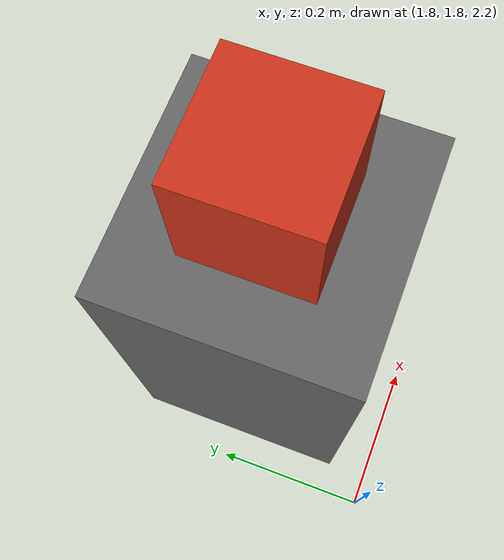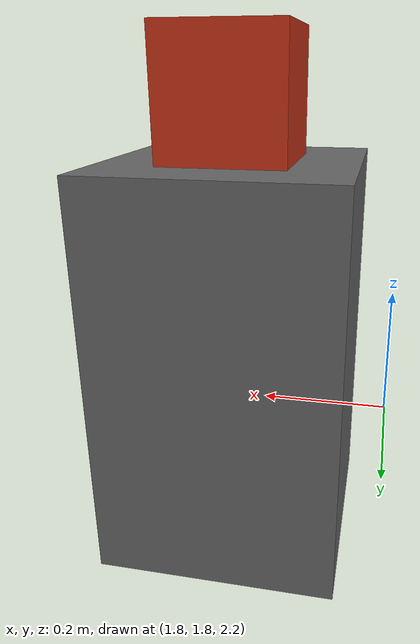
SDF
<?xml version="1.0" encoding="UTF-8"?>
<sdf version="1.9">
  <world name="default_payload_stand">
    <physics type="ode">
      <max_step_size>0.004</max_step_size>
      <real_time_factor>1.0</real_time_factor>
      <real_time_update_rate>250</real_time_update_rate>
    </physics>
    <gravity>0 0 -9.8</gravity>
    <magnetic_field>6e-06 2.3e-05 -4.2e-05</magnetic_field>
    <atmosphere type="adiabatic"/>
    <scene>
      <grid>false</grid>
      <ambient>0.4 0.4 0.4 1</ambient>
      <background>0.7 0.7 0.7 1</background>
      <shadows>true</shadows>
    </scene>
    <model name="ground_plane">
      <static>true</static>
      <link name="link">
        <collision name="collision">
          <geometry>
            <plane>
              <normal>0 0 1</normal>
              <size>1 1</size>
            </plane>
          </geometry>
          <surface>
            <friction>
              <ode/>
            </friction>
            <bounce/>
            <contact/>
          </surface>
        </collision>
        <visual name="visual">
          <geometry>
            <plane>
              <normal>0 0 1</normal>
              <size>500 500</size>
            </plane>
          </geometry>
          <material>
            <ambient>0.8 0.8 0.8 1</ambient>
            <diffuse>0.8 0.8 0.8 1</diffuse>
            <specular>0.8 0.8 0.8 1</specular>
          </material>
        </visual>
        <pose>0 0 0 0 -0 0</pose>
        <inertial>
          <pose>0 0 0 0 -0 0</pose>
          <mass>1</mass>
          <inertia>
            <ixx>1</ixx>
            <ixy>0</ixy>
            <ixz>0</ixz>
            <iyy>1</iyy>
            <iyz>0</iyz>
            <izz>1</izz>
          </inertia>
        </inertial>
        <enable_wind>false</enable_wind>
      </link>
      <pose>0 0 0 0 -0 0</pose>
      <self_collide>false</self_collide>
    </model>
    <light name="sunUTC" type="directional">
      <pose>0 0 500 0 -0 0</pose>
      <cast_shadows>true</cast_shadows>
      <intensity>1</intensity>
      <direction>0.001 0.625 -0.78</direction>
      <diffuse>0.904 0.904 0.904 1</diffuse>
      <specular>0.271 0.271 0.271 1</specular>
      <attenuation>
        <range>2000</range>
        <linear>0</linear>
        <constant>1</constant>
        <quadratic>0</quadratic>
      </attenuation>
      <spot>
        <inner_angle>0</inner_angle>
        <outer_angle>0</outer_angle>
        <falloff>0</falloff>
      </spot>
    </light>
    <spherical_coordinates>
      <surface_model>EARTH_WGS84</surface_model>
      <world_frame_orientation>ENU</world_frame_orientation>
      <latitude_deg>47.397971057728974</latitude_deg>
      <longitude_deg> 8.546163739800146</longitude_deg>
      <elevation>0</elevation>
    </spherical_coordinates>

    <model name="payload_stand">
      <static>true</static>
      <pose>2.0 2.0 2.375 0 0 0</pose>
      <link name="stand_link">
        <visual name="visual">
          <geometry>
            <box>
              <size>0.3 0.3 0.5</size>
            </box>
          </geometry>
          <material>
            <ambient>0.4 0.4 0.4 1</ambient>
            <diffuse>0.4 0.4 0.4 1</diffuse>
          </material>
        </visual>
        <collision name="collision">
          <geometry>
            <box>
              <size>0.3 0.3 0.5</size>
            </box>
          </geometry>
        </collision>
      </link>
    </model>

    <model name="payload">
      <pose>2.0 2.0 2.7 0 0 0</pose>
      <link name="payload_link">
        <inertial>
          <mass>1.5</mass>
          <inertia>
            <ixx>0.005625</ixx>
            <ixy>0</ixy>
            <ixz>0</ixz>
            <iyy>0.005625</iyy>
            <iyz>0</iyz>
            <izz>0.005625</izz>
          </inertia>
        </inertial>
        <visual name="visual">
          <geometry>
            <box>
              <size>0.15 0.15 0.15</size>
            </box>
          </geometry>
          <material>
            <ambient>0.8 0.2 0.1 1</ambient>
            <diffuse>0.8 0.2 0.1 1</diffuse>
          </material>
        </visual>
        <collision name="collision">
          <geometry>
            <box>
              <size>0.15 0.15 0.15</size>
            </box>
          </geometry>
        </collision>
      </link>
    </model>
  </world>
</sdf>
